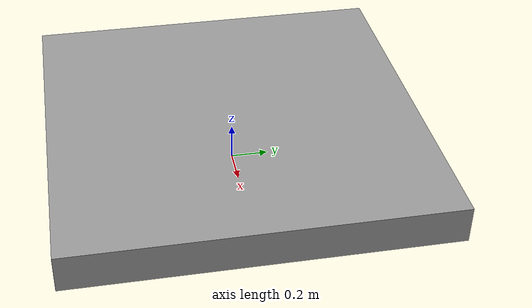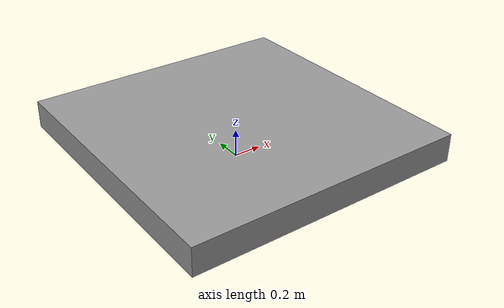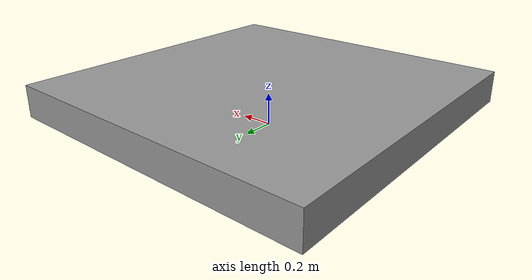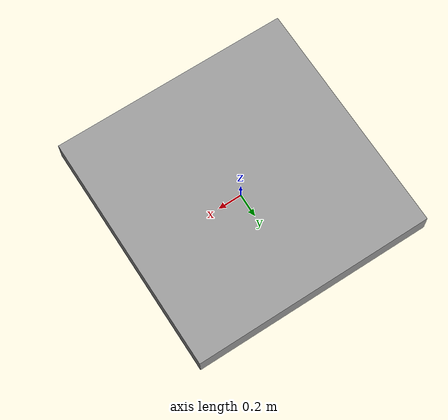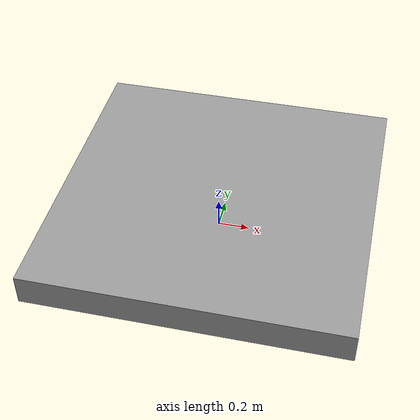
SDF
<sdf version="1.5">
 <world name="default">
  <light name="sun" type="directional">
   <pose>0 0 10 0 -0 0</pose>
   <diffuse>0.8 0.8 0.8 1</diffuse>
   <specular>0.2 0.2 0.2 1</specular>
   <attenuation>
    <range>1000</range>
    <constant>0.9</constant>
    <linear>0.01</linear>
    <quadratic>0.001</quadratic>
   </attenuation>
   <direction>0.5 0.1 -0.9</direction>
  </light>
  <scene><ambient>0.4 0.4 0.4 1</ambient><background>0.7 0.7 0.7 1</background><shadows>0</shadows></scene>
  <physics type="ode">
   <max_step_size>0.01</max_step_size>
   <real_time_factor>1</real_time_factor>
   <real_time_update_rate>2000</real_time_update_rate>
   <gravity>0 0 -9.8</gravity>
  </physics>
  <include><uri>model://platform_2D_moving</uri><pose>0 0 0.2 0 0 0</pose></include>
 </world>
</sdf>

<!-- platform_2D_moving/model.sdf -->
<sdf version='1.7'>
  <model name='platform_2D_moving'>
    <link name='link_0'>
      <inertial>
        <mass>1000</mass>
        <inertia>
          <ixx>336.667</ixx>
          <ixy>0</ixy>
          <ixz>0</ixz>
          <iyy>336.667</iyy>
          <iyz>0</iyz>
          <izz>666.667</izz>
        </inertia>
        <pose>0 0 0 0 -0 0</pose>
      </inertial>
      <pose>0 0 0 0 -0 0</pose>
      <gravity>0</gravity>
      <self_collide>0</self_collide>
      <kinematic>0</kinematic>
      <enable_wind>0</enable_wind>
      <visual name='visual'>
        <pose>0 0 0 0 -0 0</pose>
        <geometry>
          <box>
            <size>2 2 0.2</size>
          </box>
        </geometry>
        <material>
          <lighting>1</lighting>
          <script>
            <uri>file://media/materials/scripts/gazebo.material</uri>
            <name>Gazebo/Grey</name>
          </script>
          <shader type='pixel'>
            <normal_map>__default__</normal_map>
          </shader>
          <ambient>0.3 0.3 0.3 1</ambient>
          <diffuse>0.7 0.7 0.7 1</diffuse>
          <specular>0.01 0.01 0.01 1</specular>
          <emissive>0 0 0 1</emissive>
        </material>
        <transparency>0</transparency>
        <cast_shadows>1</cast_shadows>
      </visual>
      <collision name='collision'>
        <laser_retro>0</laser_retro>
        <max_contacts>10</max_contacts>
        <pose>0 0 0 0 -0 0</pose>
        <geometry>
          <box>
            <size>2 2 0.2</size>
          </box>
        </geometry>
        <surface>
          <friction>
            <ode>
              <mu>1</mu>
              <mu2>1</mu2>
              <fdir1>0 0 0</fdir1>
              <slip1>0</slip1>
              <slip2>0</slip2>
            </ode>
            <torsional>
              <coefficient>1</coefficient>
              <patch_radius>0</patch_radius>
              <surface_radius>0</surface_radius>
              <use_patch_radius>1</use_patch_radius>
              <ode>
                <slip>0</slip>
              </ode>
            </torsional>
          </friction>
          <bounce>
            <restitution_coefficient>0</restitution_coefficient>
            <threshold>1e+06</threshold>
          </bounce>
          <contact>
            <collide_without_contact>0</collide_without_contact>
            <collide_without_contact_bitmask>1</collide_without_contact_bitmask>
            <collide_bitmask>1</collide_bitmask>
            <ode>
              <soft_cfm>0</soft_cfm>
              <soft_erp>0.2</soft_erp>
              <kp>1e+13</kp>
              <kd>1</kd>
              <max_vel>0.01</max_vel>
              <min_depth>0</min_depth>
            </ode>
            <bullet>
              <split_impulse>1</split_impulse>
              <split_impulse_penetration_threshold>-0.01</split_impulse_penetration_threshold>
              <soft_cfm>0</soft_cfm>
              <soft_erp>0.2</soft_erp>
              <kp>1e+13</kp>
              <kd>1</kd>
            </bullet>
          </contact>
        </surface>
      </collision>
    </link>
    <static>0</static>
    <allow_auto_disable>1</allow_auto_disable>

    <plugin name="platform_plugin_2D_moving" filename="libplatform_plugin_2D_moving.so">
    </plugin>
  </model>
</sdf>
